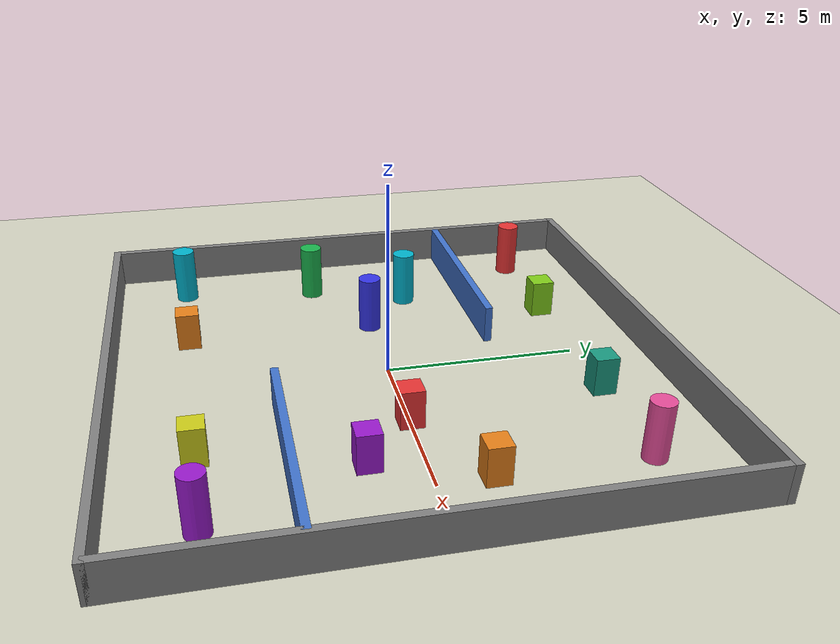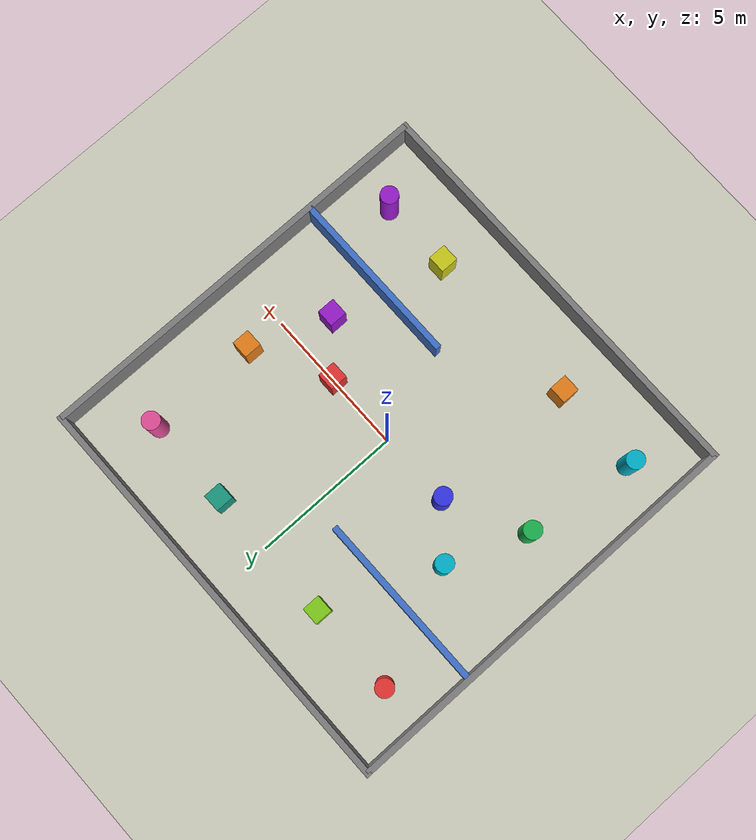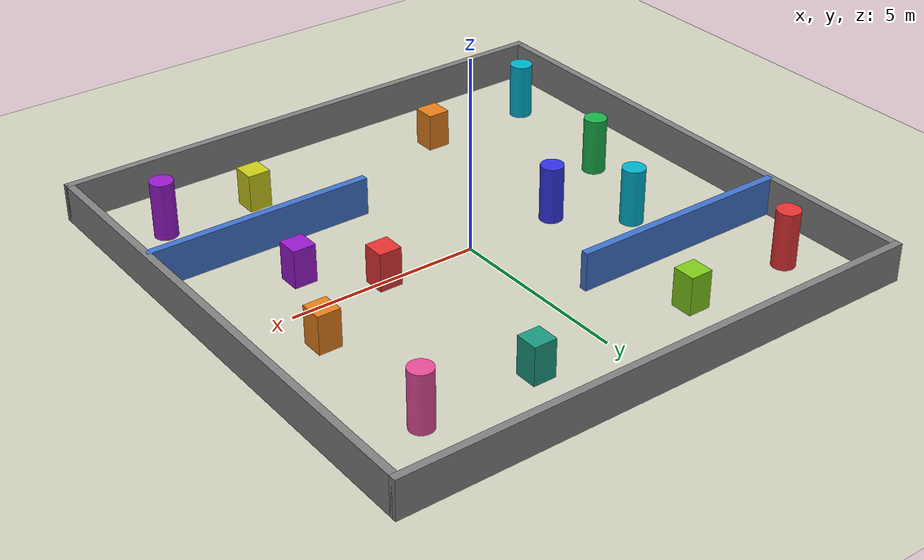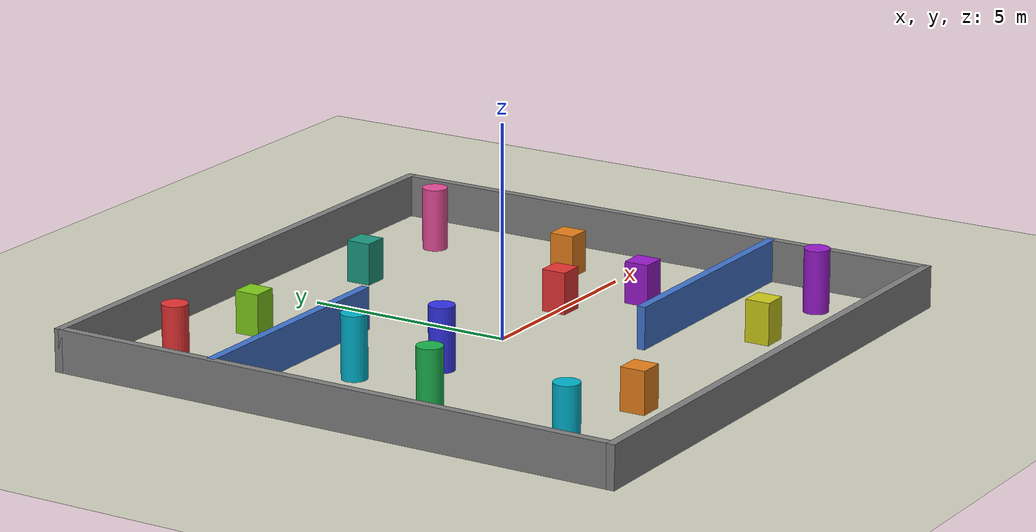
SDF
<?xml version="1.0" ?>
<sdf version="1.6">
  <world name="default">
    <physics name="1ms" type="ignored">
      <max_step_size>0.001</max_step_size>
      <real_time_factor>1.0</real_time_factor>
    </physics>
    <plugin filename="libignition-gazebo-physics-system.so"
            name="ignition::gazebo::systems::Physics"/>
    <plugin filename="libignition-gazebo-user-commands-system.so"
            name="ignition::gazebo::systems::UserCommands"/>
    <plugin filename="libignition-gazebo-scene-broadcaster-system.so"
            name="ignition::gazebo::systems::SceneBroadcaster"/>

    <light type="directional" name="sun">
      <cast_shadows>true</cast_shadows>
      <pose>0 0 10 0 0 0</pose>
      <diffuse>0.85 0.85 0.85 1</diffuse>
      <specular>0.2 0.2 0.2 1</specular>
      <attenuation>
        <range>1000</range><constant>0.9</constant>
        <linear>0.01</linear><quadratic>0.001</quadratic>
      </attenuation>
      <direction>-0.5 0.1 -0.9</direction>
    </light>

    <!-- Ground -->
    <model name="ground_plane"><static>true</static>
      <link name="link">
        <collision name="col"><geometry><plane><normal>0 0 1</normal><size>100 100</size></plane></geometry></collision>
        <visual name="vis"><geometry><plane><normal>0 0 1</normal><size>100 100</size></plane></geometry>
          <material><ambient>0.82 0.82 0.75 1</ambient><diffuse>0.82 0.82 0.75 1</diffuse></material></visual>
      </link>
    </model>

    <!-- ── Outer boundary ─────────────────────────────────── -->
    <model name="wall_n"><static>true</static><pose>0 7 0.5 0 0 0</pose>
      <link name="link"><collision name="c"><geometry><box><size>14.2 0.2 1</size></box></geometry></collision>
        <visual name="v"><geometry><box><size>14.2 0.2 1</size></box></geometry>
          <material><ambient>0.5 0.5 0.5 1</ambient><diffuse>0.5 0.5 0.5 1</diffuse></material></visual></link>
    </model>
    <model name="wall_s"><static>true</static><pose>0 -7 0.5 0 0 0</pose>
      <link name="link"><collision name="c"><geometry><box><size>14.2 0.2 1</size></box></geometry></collision>
        <visual name="v"><geometry><box><size>14.2 0.2 1</size></box></geometry>
          <material><ambient>0.5 0.5 0.5 1</ambient><diffuse>0.5 0.5 0.5 1</diffuse></material></visual></link>
    </model>
    <model name="wall_e"><static>true</static><pose>7 0 0.5 0 0 0</pose>
      <link name="link"><collision name="c"><geometry><box><size>0.2 14 1</size></box></geometry></collision>
        <visual name="v"><geometry><box><size>0.2 14 1</size></box></geometry>
          <material><ambient>0.5 0.5 0.5 1</ambient><diffuse>0.5 0.5 0.5 1</diffuse></material></visual></link>
    </model>
    <model name="wall_w"><static>true</static><pose>-7 0 0.5 0 0 0</pose>
      <link name="link"><collision name="c"><geometry><box><size>0.2 14 1</size></box></geometry></collision>
        <visual name="v"><geometry><box><size>0.2 14 1</size></box></geometry>
          <material><ambient>0.5 0.5 0.5 1</ambient><diffuse>0.5 0.5 0.5 1</diffuse></material></visual></link>
    </model>

    <!-- ── H1: y=3, x=-7→-1  gap RIGHT (x=-1→7, 8 m) ──── -->
    <model name="h1"><static>true</static><pose>-4 3 0.5 0 0 0</pose>
      <link name="link"><collision name="c"><geometry><box><size>6 0.2 1</size></box></geometry></collision>
        <visual name="v"><geometry><box><size>6 0.2 1</size></box></geometry>
          <material><ambient>0.25 0.45 0.8 1</ambient><diffuse>0.25 0.45 0.8 1</diffuse></material></visual></link>
    </model>

    <!-- ── H2: y=-3, x=1→7  gap LEFT (x=-7→1, 8 m) ────── -->
    <model name="h2"><static>true</static><pose>4 -3 0.5 0 0 0</pose>
      <link name="link"><collision name="c"><geometry><box><size>6 0.2 1</size></box></geometry></collision>
        <visual name="v"><geometry><box><size>6 0.2 1</size></box></geometry>
          <material><ambient>0.25 0.45 0.8 1</ambient><diffuse>0.25 0.45 0.8 1</diffuse></material></visual></link>
    </model>

    <!-- CENTER ZONE (y=-1.5 to 1.5) ──────────────────────── -->
    <!-- obs_c1: (2.5, 0) red box — 4.5m from H1, clear of origin -->
    <model name="obs_c1"><static>true</static><pose>2.5 0 0.5 0 0 0</pose>
      <link name="link"><collision name="c"><geometry><box><size>0.6 0.6 1</size></box></geometry></collision>
        <visual name="v"><geometry><box><size>0.6 0.6 1</size></box></geometry>
          <material><ambient>0.9 0.2 0.2 1</ambient><diffuse>0.9 0.2 0.2 1</diffuse></material></visual></link>
    </model>
    <!-- obs_c2: (-2.5, 0) blue cylinder — symmetric to c1 -->
    <model name="obs_c2"><static>true</static><pose>-2.5 0 0.75 0 0 0</pose>
      <link name="link"><collision name="c"><geometry><cylinder><radius>0.3</radius><length>1.5</length></cylinder></geometry></collision>
        <visual name="v"><geometry><cylinder><radius>0.3</radius><length>1.5</length></cylinder></geometry>
          <material><ambient>0.2 0.2 0.9 1</ambient><diffuse>0.2 0.2 0.9 1</diffuse></material></visual></link>
    </model>
    <!-- obs_c3: (5.0, 1.3) orange box — 1.6m from east wall, 1.7m below H1 -->
    <model name="obs_c3"><static>true</static><pose>5.0 1.3 0.5 0 0 0</pose>
      <link name="link"><collision name="c"><geometry><box><size>0.6 0.6 1</size></box></geometry></collision>
        <visual name="v"><geometry><box><size>0.6 0.6 1</size></box></geometry>
          <material><ambient>0.9 0.5 0.1 1</ambient><diffuse>0.9 0.5 0.1 1</diffuse></material></visual></link>
    </model>
    <!-- obs_c4: (-5.0, -1.3) green cylinder — 1.6m from west wall, 1.7m above H2 -->
    <model name="obs_c4"><static>true</static><pose>-5.0 -1.3 0.75 0 0 0</pose>
      <link name="link"><collision name="c"><geometry><cylinder><radius>0.3</radius><length>1.5</length></cylinder></geometry></collision>
        <visual name="v"><geometry><cylinder><radius>0.3</radius><length>1.5</length></cylinder></geometry>
          <material><ambient>0.1 0.7 0.3 1</ambient><diffuse>0.1 0.7 0.3 1</diffuse></material></visual></link>
    </model>
    <!-- obs_c5: (4.0, -1.3) purple box -->
    <model name="obs_c5"><static>true</static><pose>4.0 -1.3 0.5 0 0 0</pose>
      <link name="link"><collision name="c"><geometry><box><size>0.6 0.6 1</size></box></geometry></collision>
        <visual name="v"><geometry><box><size>0.6 0.6 1</size></box></geometry>
          <material><ambient>0.6 0.1 0.8 1</ambient><diffuse>0.6 0.1 0.8 1</diffuse></material></visual></link>
    </model>
    <!-- obs_c6: (-4.0, 1.3) cyan cylinder -->
    <model name="obs_c6"><static>true</static><pose>-4.0 1.3 0.75 0 0 0</pose>
      <link name="link"><collision name="c"><geometry><cylinder><radius>0.3</radius><length>1.5</length></cylinder></geometry></collision>
        <visual name="v"><geometry><cylinder><radius>0.3</radius><length>1.5</length></cylinder></geometry>
          <material><ambient>0.0 0.7 0.8 1</ambient><diffuse>0.0 0.7 0.8 1</diffuse></material></visual></link>
    </model>

    <!-- NORTH-RIGHT ZONE (y>3, x>-1) ── enter via H1 right gap -->
    <!-- obs_nr1: (2.0, 5.0) teal box — 1.9m below north wall, 1.9m above H1 -->
    <model name="obs_nr1"><static>true</static><pose>2.0 5.0 0.5 0 0 0</pose>
      <link name="link"><collision name="c"><geometry><box><size>0.6 0.6 1</size></box></geometry></collision>
        <visual name="v"><geometry><box><size>0.6 0.6 1</size></box></geometry>
          <material><ambient>0.1 0.6 0.5 1</ambient><diffuse>0.1 0.6 0.5 1</diffuse></material></visual></link>
    </model>
    <!-- obs_nr2: (5.0, 5.0) pink cylinder — 1.6m from east wall, 3m from nr1 -->
    <model name="obs_nr2"><static>true</static><pose>5.0 5.0 0.75 0 0 0</pose>
      <link name="link"><collision name="c"><geometry><cylinder><radius>0.3</radius><length>1.5</length></cylinder></geometry></collision>
        <visual name="v"><geometry><cylinder><radius>0.3</radius><length>1.5</length></cylinder></geometry>
          <material><ambient>0.9 0.3 0.6 1</ambient><diffuse>0.9 0.3 0.6 1</diffuse></material></visual></link>
    </model>

    <!-- NORTH-LEFT ZONE (y>3, x<-1) ── travel west at y>3 via H1 gap -->
    <!-- obs_nl1: (-2.5, 5.0) lime box — 1.9m from H1 north face -->
    <model name="obs_nl1"><static>true</static><pose>-2.5 5.0 0.5 0 0 0</pose>
      <link name="link"><collision name="c"><geometry><box><size>0.6 0.6 1</size></box></geometry></collision>
        <visual name="v"><geometry><box><size>0.6 0.6 1</size></box></geometry>
          <material><ambient>0.5 0.8 0.1 1</ambient><diffuse>0.5 0.8 0.1 1</diffuse></material></visual></link>
    </model>
    <!-- obs_nl2: (-5.5, 5.0) red cylinder — 1.1m from west wall (passable), 3m from nl1 -->
    <model name="obs_nl2"><static>true</static><pose>-5.5 5.0 0.75 0 0 0</pose>
      <link name="link"><collision name="c"><geometry><cylinder><radius>0.3</radius><length>1.5</length></cylinder></geometry></collision>
        <visual name="v"><geometry><cylinder><radius>0.3</radius><length>1.5</length></cylinder></geometry>
          <material><ambient>0.9 0.2 0.2 1</ambient><diffuse>0.9 0.2 0.2 1</diffuse></material></visual></link>
    </model>

    <!-- SOUTH-LEFT ZONE (y<-3, x<1) ── enter via H2 left gap -->
    <!-- obs_sl1: (-2.5, -5.0) orange box — 1.9m above south wall -->
    <model name="obs_sl1"><static>true</static><pose>-2.5 -5.0 0.5 0 0 0</pose>
      <link name="link"><collision name="c"><geometry><box><size>0.6 0.6 1</size></box></geometry></collision>
        <visual name="v"><geometry><box><size>0.6 0.6 1</size></box></geometry>
          <material><ambient>0.9 0.5 0.1 1</ambient><diffuse>0.9 0.5 0.1 1</diffuse></material></visual></link>
    </model>
    <!-- obs_sl2: (-5.5, -5.0) cyan cylinder — 3m from sl1 -->
    <model name="obs_sl2"><static>true</static><pose>-5.5 -5.0 0.75 0 0 0</pose>
      <link name="link"><collision name="c"><geometry><cylinder><radius>0.3</radius><length>1.5</length></cylinder></geometry></collision>
        <visual name="v"><geometry><cylinder><radius>0.3</radius><length>1.5</length></cylinder></geometry>
          <material><ambient>0.0 0.7 0.8 1</ambient><diffuse>0.0 0.7 0.8 1</diffuse></material></visual></link>
    </model>

    <!-- SOUTH-RIGHT ZONE (y<-3, x>1) ── travel east at y<-3 via H2 gap -->
    <!-- obs_sr1: (3.0, -5.0) yellow box -->
    <model name="obs_sr1"><static>true</static><pose>3.0 -5.0 0.5 0 0 0</pose>
      <link name="link"><collision name="c"><geometry><box><size>0.6 0.6 1</size></box></geometry></collision>
        <visual name="v"><geometry><box><size>0.6 0.6 1</size></box></geometry>
          <material><ambient>0.8 0.8 0.1 1</ambient><diffuse>0.8 0.8 0.1 1</diffuse></material></visual></link>
    </model>
    <!-- obs_sr2: (5.5, -5.0) purple cylinder — 1.1m from east wall, 2.5m from sr1 -->
    <model name="obs_sr2"><static>true</static><pose>5.5 -5.0 0.75 0 0 0</pose>
      <link name="link"><collision name="c"><geometry><cylinder><radius>0.3</radius><length>1.5</length></cylinder></geometry></collision>
        <visual name="v"><geometry><cylinder><radius>0.3</radius><length>1.5</length></cylinder></geometry>
          <material><ambient>0.6 0.1 0.8 1</ambient><diffuse>0.6 0.1 0.8 1</diffuse></material></visual></link>
    </model>

  </world>
</sdf>
